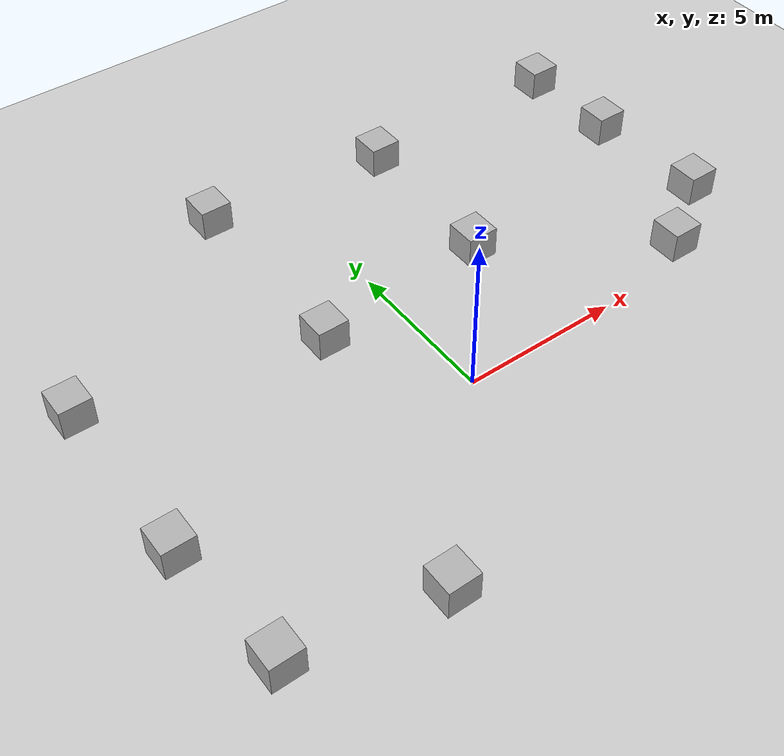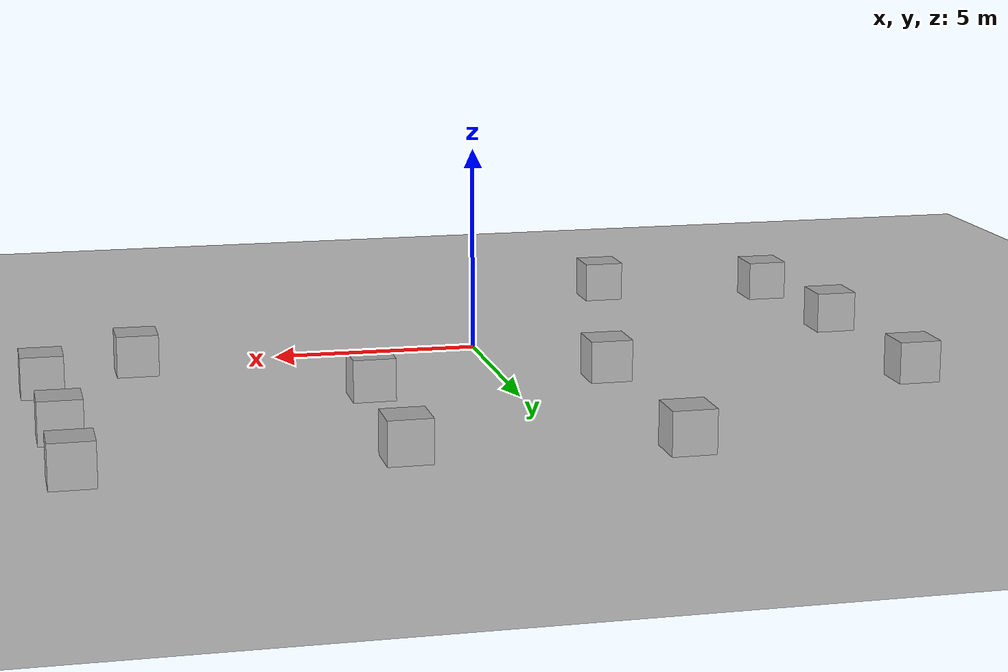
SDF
<?xml version="1.0" ?>
<sdf version='1.10'>
  <world name='empty'>
    <physics name='1ms' type='ignored'>
      <max_step_size>0.001</max_step_size>
      <real_time_factor>1</real_time_factor>
      <real_time_update_rate>1000</real_time_update_rate>
    </physics>
    <plugin name='gz::sim::systems::Physics' filename='gz-sim-physics-system'/>
    <plugin name='gz::sim::systems::UserCommands' filename='gz-sim-user-commands-system'/>
    <plugin name='gz::sim::systems::SceneBroadcaster' filename='gz-sim-scene-broadcaster-system'/>
    <plugin name='gz::sim::systems::Contact' filename='gz-sim-contact-system'/>
    <gravity>0 0 -9.8000000000000007</gravity>
    <magnetic_field>5.5644999999999998e-06 2.2875799999999999e-05 -4.2388400000000002e-05</magnetic_field>
    <atmosphere type='adiabatic'/>
    <scene>
      <ambient>0.400000006 0.400000006 0.400000006 1</ambient>
      <background>0.699999988 0.699999988 0.699999988 1</background>
      <shadows>true</shadows>
    </scene>

    <model name='ground_plane'>
      <static>true</static>
      <link name='link'>
        <collision name='collision'>
          <geometry>
            <plane>
              <normal>0 0 1</normal>
              <size>100 100</size>
            </plane>
          </geometry>
          <surface>
            <friction>
              <ode/>
            </friction>
            <bounce/>
            <contact/>
          </surface>
        </collision>
        <visual name='visual'>
          <geometry>
            <plane>
              <normal>0 0 1</normal>
              <size>100 100</size>
            </plane>
          </geometry>
          <material>
            <ambient>0.800000012 0.800000012 0.800000012 1</ambient>
            <diffuse>0.800000012 0.800000012 0.800000012 1</diffuse>
            <specular>0.800000012 0.800000012 0.800000012 1</specular>
          </material>
        </visual>
        <pose>0 0 0 0 0 0</pose>
        <inertial>
          <pose>0 0 0 0 0 0</pose>
          <mass>1</mass>
          <inertia>
            <ixx>1</ixx>
            <ixy>0</ixy>
            <ixz>0</ixz>
            <iyy>1</iyy>
            <iyz>0</iyz>
            <izz>1</izz>
          </inertia>
        </inertial>
        <enable_wind>false</enable_wind>
      </link>
      <pose>0 0 0 0 0 0</pose>
      <self_collide>false</self_collide>
    </model>

    <model name='box'>
      <pose>3.3563625292355308 4.2428040773166416 0.49999999990199806 6.2287739151293738e-22 9.3279666454713669e-22 -3.6315533669320137e-22</pose>
      <link name='box_link'>
        <inertial>
          <inertia>
            <ixx>0.16666</ixx>
            <ixy>0</ixy>
            <ixz>0</ixz>
            <iyy>0.16666</iyy>
            <iyz>0</iyz>
            <izz>0.16666</izz>
          </inertia>
          <mass>1</mass>
          <pose>0 0 0 0 0 0</pose>
        </inertial>
        <collision name='box_collision'>
          <geometry>
            <box>
              <size>1 1 1</size>
            </box>
          </geometry>
          <surface>
            <friction>
              <ode/>
            </friction>
            <bounce/>
            <contact/>
          </surface>
        </collision>
        <visual name='box_visual'>
          <geometry>
            <box>
              <size>1 1 1</size>
            </box>
          </geometry>
          <material>
            <ambient>0.300000012 0.300000012 0.300000012 1</ambient>
            <diffuse>0.699999988 0.699999988 0.699999988 1</diffuse>
            <specular>1 1 1 1</specular>
          </material>
        </visual>
        <pose>0 0 0 0 0 0</pose>
        <enable_wind>false</enable_wind>
      </link>
      <static>false</static>
      <self_collide>false</self_collide>
    </model>

    <model name='box_0'>
      <pose>8.4502979164957956 0.72458152235163542 0.49999999990199806 6.2287739151293738e-22 9.3279666454713669e-22 -3.6315533669320137e-22</pose>
      <link name='box_link'>
        <inertial>
          <inertia>
            <ixx>0.16666</ixx>
            <ixy>0</ixy>
            <ixz>0</ixz>
            <iyy>0.16666</iyy>
            <iyz>0</iyz>
            <izz>0.16666</izz>
          </inertia>
          <mass>1</mass>
          <pose>0 0 0 0 0 0</pose>
        </inertial>
        <collision name='box_collision'>
          <geometry>
            <box>
              <size>1 1 1</size>
            </box>
          </geometry>
          <surface>
            <friction>
              <ode/>
            </friction>
            <bounce/>
            <contact/>
          </surface>
        </collision>
        <visual name='box_visual'>
          <geometry>
            <box>
              <size>1 1 1</size>
            </box>
          </geometry>
          <material>
            <ambient>0.300000012 0.300000012 0.300000012 1</ambient>
            <diffuse>0.699999988 0.699999988 0.699999988 1</diffuse>
            <specular>1 1 1 1</specular>
          </material>
        </visual>
        <pose>0 0 0 0 0 0</pose>
        <enable_wind>false</enable_wind>
      </link>
      <static>false</static>
      <self_collide>false</self_collide>
    </model>

    <model name='box_1'>
      <pose>3.5460155669407367 9.4859182409868303 0.49999999990199806 6.2287739151293738e-22 9.3279666454713669e-22 -3.6315533669320137e-22</pose>
      <link name='box_link'>
        <inertial>
          <inertia>
            <ixx>0.16666</ixx>
            <ixy>0</ixy>
            <ixz>0</ixz>
            <iyy>0.16666</iyy>
            <iyz>0</iyz>
            <izz>0.16666</izz>
          </inertia>
          <mass>1</mass>
          <pose>0 0 0 0 0 0</pose>
        </inertial>
        <collision name='box_collision'>
          <geometry>
            <box>
              <size>1 1 1</size>
            </box>
          </geometry>
          <surface>
            <friction>
              <ode/>
            </friction>
            <bounce/>
            <contact/>
          </surface>
        </collision>
        <visual name='box_visual'>
          <geometry>
            <box>
              <size>1 1 1</size>
            </box>
          </geometry>
          <material>
            <ambient>0.300000012 0.300000012 0.300000012 1</ambient>
            <diffuse>0.699999988 0.699999988 0.699999988 1</diffuse>
            <specular>1 1 1 1</specular>
          </material>
        </visual>
        <pose>0 0 0 0 0 0</pose>
        <enable_wind>false</enable_wind>
      </link>
      <static>false</static>
      <self_collide>false</self_collide>
    </model>

    <model name='box_2'>
      <pose>-2.4270618738763381 3.7060708839742129 0.49999999990199806 2.5448413974852911e-21 9.9777089524688389e-23 -8.7974751158573218e-23</pose>
      <link name='box_link'>
        <inertial>
          <inertia>
            <ixx>0.16666</ixx>
            <ixy>0</ixy>
            <ixz>0</ixz>
            <iyy>0.16666</iyy>
            <iyz>0</iyz>
            <izz>0.16666</izz>
          </inertia>
          <mass>1</mass>
          <pose>0 0 0 0 0 0</pose>
        </inertial>
        <collision name='box_collision'>
          <geometry>
            <box>
              <size>1 1 1</size>
            </box>
          </geometry>
          <surface>
            <friction>
              <ode/>
            </friction>
            <bounce/>
            <contact/>
          </surface>
        </collision>
        <visual name='box_visual'>
          <geometry>
            <box>
              <size>1 1 1</size>
            </box>
          </geometry>
          <material>
            <ambient>0.300000012 0.300000012 0.300000012 1</ambient>
            <diffuse>0.699999988 0.699999988 0.699999988 1</diffuse>
            <specular>1 1 1 1</specular>
          </material>
        </visual>
        <pose>0 0 0 0 0 0</pose>
        <enable_wind>false</enable_wind>
      </link>
      <static>false</static>
      <self_collide>false</self_collide>
    </model>

    <model name='box_3'>
      <pose>-4.6663983524553103 -5.029478397871106 0.49999999990199806 6.2287739151293738e-22 9.3279666454713669e-22 -3.6315533669320137e-22</pose>
      <link name='box_link'>
        <inertial>
          <inertia>
            <ixx>0.16666</ixx>
            <ixy>0</ixy>
            <ixz>0</ixz>
            <iyy>0.16666</iyy>
            <iyz>0</iyz>
            <izz>0.16666</izz>
          </inertia>
          <mass>1</mass>
          <pose>0 0 0 0 0 0</pose>
        </inertial>
        <collision name='box_collision'>
          <geometry>
            <box>
              <size>1 1 1</size>
            </box>
          </geometry>
          <surface>
            <friction>
              <ode/>
            </friction>
            <bounce/>
            <contact/>
          </surface>
        </collision>
        <visual name='box_visual'>
          <geometry>
            <box>
              <size>1 1 1</size>
            </box>
          </geometry>
          <material>
            <ambient>0.300000012 0.300000012 0.300000012 1</ambient>
            <diffuse>0.699999988 0.699999988 0.699999988 1</diffuse>
            <specular>1 1 1 1</specular>
          </material>
        </visual>
        <pose>0 0 0 0 0 0</pose>
        <enable_wind>false</enable_wind>
      </link>
      <static>false</static>
      <self_collide>false</self_collide>
    </model>

    <model name='box_4'>
      <pose>-9.4985039321527474 -0.10570470847583469 0.49999999990199806 6.2287739151293738e-22 9.3279666454713669e-22 -3.6315533669320137e-22</pose>
      <link name='box_link'>
        <inertial>
          <inertia>
            <ixx>0.16666</ixx>
            <ixy>0</ixy>
            <ixz>0</ixz>
            <iyy>0.16666</iyy>
            <iyz>0</iyz>
            <izz>0.16666</izz>
          </inertia>
          <mass>1</mass>
          <pose>0 0 0 0 0 0</pose>
        </inertial>
        <collision name='box_collision'>
          <geometry>
            <box>
              <size>1 1 1</size>
            </box>
          </geometry>
          <surface>
            <friction>
              <ode/>
            </friction>
            <bounce/>
            <contact/>
          </surface>
        </collision>
        <visual name='box_visual'>
          <geometry>
            <box>
              <size>1 1 1</size>
            </box>
          </geometry>
          <material>
            <ambient>0.300000012 0.300000012 0.300000012 1</ambient>
            <diffuse>0.699999988 0.699999988 0.699999988 1</diffuse>
            <specular>1 1 1 1</specular>
          </material>
        </visual>
        <pose>0 0 0 0 0 0</pose>
        <enable_wind>false</enable_wind>
      </link>
      <static>false</static>
      <self_collide>false</self_collide>
    </model>

    <model name='box_5'>
      <pose>-9.5031785986260893 5.3673527797359499 0.49999999990199806 6.2287739151293738e-22 9.3279666454713669e-22 -3.6315533669320137e-22</pose>
      <link name='box_link'>
        <inertial>
          <inertia>
            <ixx>0.16666</ixx>
            <ixy>0</ixy>
            <ixz>0</ixz>
            <iyy>0.16666</iyy>
            <iyz>0</iyz>
            <izz>0.16666</izz>
          </inertia>
          <mass>1</mass>
          <pose>0 0 0 0 0 0</pose>
        </inertial>
        <collision name='box_collision'>
          <geometry>
            <box>
              <size>1 1 1</size>
            </box>
          </geometry>
          <surface>
            <friction>
              <ode/>
            </friction>
            <bounce/>
            <contact/>
          </surface>
        </collision>
        <visual name='box_visual'>
          <geometry>
            <box>
              <size>1 1 1</size>
            </box>
          </geometry>
          <material>
            <ambient>0.300000012 0.300000012 0.300000012 1</ambient>
            <diffuse>0.699999988 0.699999988 0.699999988 1</diffuse>
            <specular>1 1 1 1</specular>
          </material>
        </visual>
        <pose>0 0 0 0 0 0</pose>
        <enable_wind>false</enable_wind>
      </link>
      <static>false</static>
      <self_collide>false</self_collide>
    </model>
    <model name='box_6'>

      <pose>-2.4400371444076532 10.07470778964816 0.49999999990199806 6.2287739151293738e-22 9.3279666454713669e-22 -3.6315533669320137e-22</pose>
      <link name='box_link'>
        <inertial>
          <inertia>
            <ixx>0.16666</ixx>
            <ixy>0</ixy>
            <ixz>0</ixz>
            <iyy>0.16666</iyy>
            <iyz>0</iyz>
            <izz>0.16666</izz>
          </inertia>
          <mass>1</mass>
          <pose>0 0 0 0 0 0</pose>
        </inertial>
        <collision name='box_collision'>
          <geometry>
            <box>
              <size>1 1 1</size>
            </box>
          </geometry>
          <surface>
            <friction>
              <ode/>
            </friction>
            <bounce/>
            <contact/>
          </surface>
        </collision>
        <visual name='box_visual'>
          <geometry>
            <box>
              <size>1 1 1</size>
            </box>
          </geometry>
          <material>
            <ambient>0.300000012 0.300000012 0.300000012 1</ambient>
            <diffuse>0.699999988 0.699999988 0.699999988 1</diffuse>
            <specular>1 1 1 1</specular>
          </material>
        </visual>
        <pose>0 0 0 0 0 0</pose>
        <enable_wind>false</enable_wind>
      </link>
      <static>false</static>
      <self_collide>false</self_collide>
    </model>
    <model name='box_7'>

      <pose>10.502342382794199 9.6726984254907791 0.49999999990199806 6.2287739151293738e-22 9.3279666454713669e-22 -3.6315533669320137e-22</pose>
      <link name='box_link'>
        <inertial>
          <inertia>
            <ixx>0.16666</ixx>
            <ixy>0</ixy>
            <ixz>0</ixz>
            <iyy>0.16666</iyy>
            <iyz>0</iyz>
            <izz>0.16666</izz>
          </inertia>
          <mass>1</mass>
          <pose>0 0 0 0 0 0</pose>
        </inertial>
        <collision name='box_collision'>
          <geometry>
            <box>
              <size>1 1 1</size>
            </box>
          </geometry>
          <surface>
            <friction>
              <ode/>
            </friction>
            <bounce/>
            <contact/>
          </surface>
        </collision>
        <visual name='box_visual'>
          <geometry>
            <box>
              <size>1 1 1</size>
            </box>
          </geometry>
          <material>
            <ambient>0.300000012 0.300000012 0.300000012 1</ambient>
            <diffuse>0.699999988 0.699999988 0.699999988 1</diffuse>
            <specular>1 1 1 1</specular>
          </material>
        </visual>
        <pose>0 0 0 0 0 0</pose>
        <enable_wind>false</enable_wind>
      </link>
      <static>false</static>
      <self_collide>false</self_collide>
    </model>
    <model name='box_8'>

      <pose>10.55956980130092 6.3444761048363247 0.49999999990199806 6.2287739151293738e-22 9.3279666454713669e-22 -3.6315533669320137e-22</pose>
      <link name='box_link'>
        <inertial>
          <inertia>
            <ixx>0.16666</ixx>
            <ixy>0</ixy>
            <ixz>0</ixz>
            <iyy>0.16666</iyy>
            <iyz>0</iyz>
            <izz>0.16666</izz>
          </inertia>
          <mass>1</mass>
          <pose>0 0 0 0 0 0</pose>
        </inertial>
        <collision name='box_collision'>
          <geometry>
            <box>
              <size>1 1 1</size>
            </box>
          </geometry>
          <surface>
            <friction>
              <ode/>
            </friction>
            <bounce/>
            <contact/>
          </surface>
        </collision>
        <visual name='box_visual'>
          <geometry>
            <box>
              <size>1 1 1</size>
            </box>
          </geometry>
          <material>
            <ambient>0.300000012 0.300000012 0.300000012 1</ambient>
            <diffuse>0.699999988 0.699999988 0.699999988 1</diffuse>
            <specular>1 1 1 1</specular>
          </material>
        </visual>
        <pose>0 0 0 0 0 0</pose>
        <enable_wind>false</enable_wind>
      </link>
      <static>false</static>
      <self_collide>false</self_collide>
    </model>
    <model name='box_9'>

      <pose>10.764603071980726 2.3297111961810257 0.49999999990199806 6.2287739151293738e-22 9.3279666454713669e-22 -3.6315533669320137e-22</pose>
      <link name='box_link'>
        <inertial>
          <inertia>
            <ixx>0.16666</ixx>
            <ixy>0</ixy>
            <ixz>0</ixz>
            <iyy>0.16666</iyy>
            <iyz>0</iyz>
            <izz>0.16666</izz>
          </inertia>
          <mass>1</mass>
          <pose>0 0 0 0 0 0</pose>
        </inertial>
        <collision name='box_collision'>
          <geometry>
            <box>
              <size>1 1 1</size>
            </box>
          </geometry>
          <surface>
            <friction>
              <ode/>
            </friction>
            <bounce/>
            <contact/>
          </surface>
        </collision>
        <visual name='box_visual'>
          <geometry>
            <box>
              <size>1 1 1</size>
            </box>
          </geometry>
          <material>
            <ambient>0.300000012 0.300000012 0.300000012 1</ambient>
            <diffuse>0.699999988 0.699999988 0.699999988 1</diffuse>
            <specular>1 1 1 1</specular>
          </material>
        </visual>
        <pose>0 0 0 0 0 0</pose>
        <enable_wind>false</enable_wind>
      </link>
      <static>false</static>
      <self_collide>false</self_collide>
    </model>

    <model name='box_14'>
      <pose>-9.0671211160667848 -4.2044843283213957 0.49999999990199806 6.2287739151293738e-22 9.3279666454713669e-22 -3.6315533669320137e-22</pose>
      <link name='box_link'>
        <inertial>
          <inertia>
            <ixx>0.16666</ixx>
            <ixy>0</ixy>
            <ixz>0</ixz>
            <iyy>0.16666</iyy>
            <iyz>0</iyz>
            <izz>0.16666</izz>
          </inertia>
          <mass>1</mass>
          <pose>0 0 0 0 0 0</pose>
        </inertial>
        <collision name='box_collision'>
          <geometry>
            <box>
              <size>1 1 1</size>
            </box>
          </geometry>
          <surface>
            <friction>
              <ode/>
            </friction>
            <bounce/>
            <contact/>
          </surface>
        </collision>
        <visual name='box_visual'>
          <geometry>
            <box>
              <size>1 1 1</size>
            </box>
          </geometry>
          <material>
            <ambient>0.300000012 0.300000012 0.300000012 1</ambient>
            <diffuse>0.699999988 0.699999988 0.699999988 1</diffuse>
            <specular>1 1 1 1</specular>
          </material>
        </visual>
        <pose>0 0 0 0 0 0</pose>
        <enable_wind>false</enable_wind>
      </link>
      <static>false</static>
      <self_collide>false</self_collide>
    </model>

    <light name='sun' type='directional'>
      <pose>0 0 10 0 0 0</pose>
      <cast_shadows>true</cast_shadows>
      <intensity>1</intensity>
      <direction>-0.5 0.10000000000000001 -0.90000000000000002</direction>
      <diffuse>0.800000012 0.800000012 0.800000012 1</diffuse>
      <specular>0.200000003 0.200000003 0.200000003 1</specular>
      <attenuation>
        <range>1000</range>
        <linear>0.01</linear>
        <constant>0.90000000000000002</constant>
        <quadratic>0.001</quadratic>
      </attenuation>
      <spot>
        <inner_angle>0</inner_angle>
        <outer_angle>0</outer_angle>
        <falloff>0</falloff>
      </spot>
    </light>
  </world>
</sdf>
